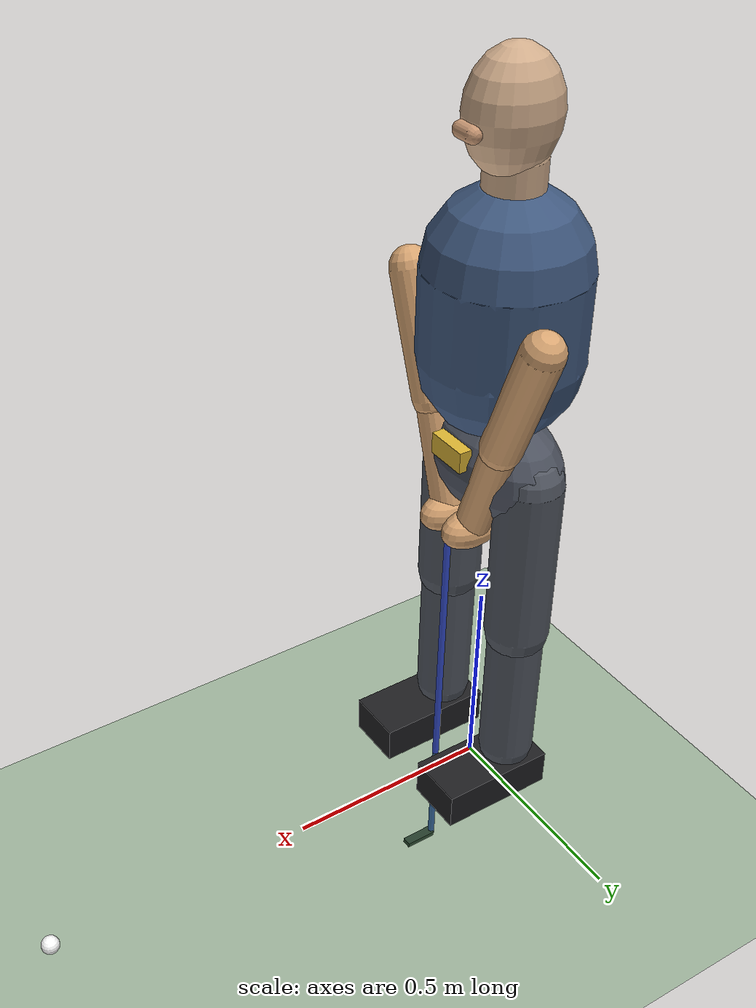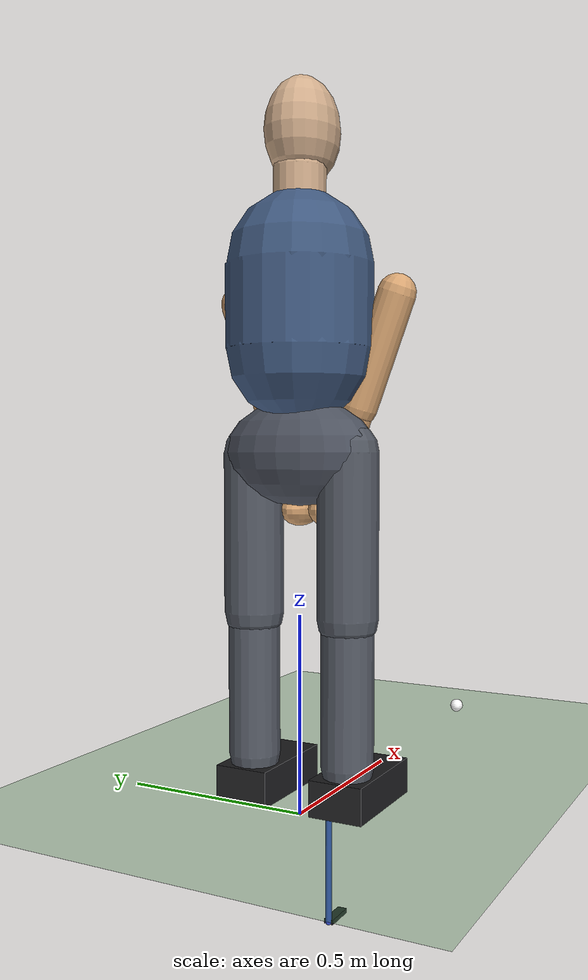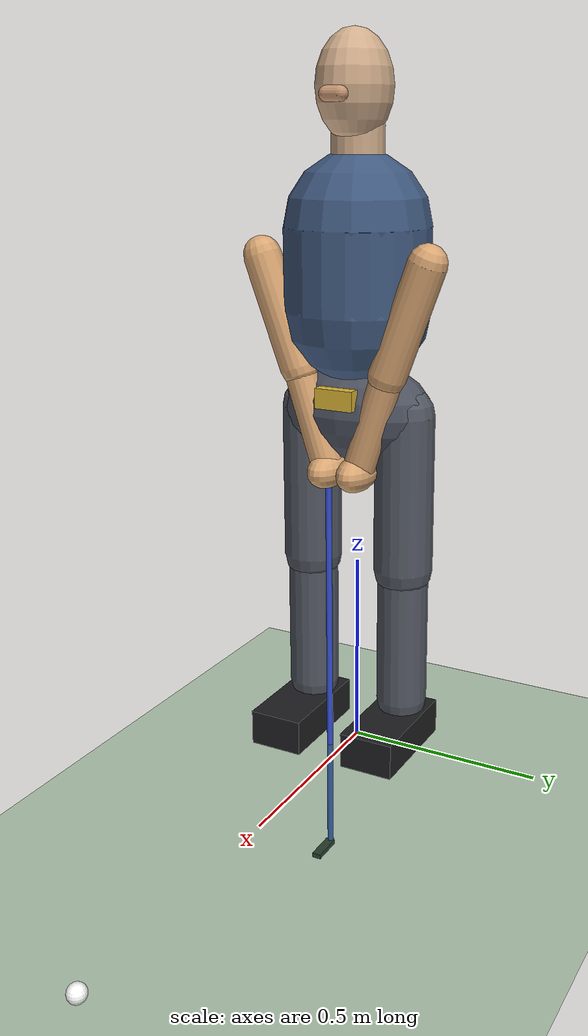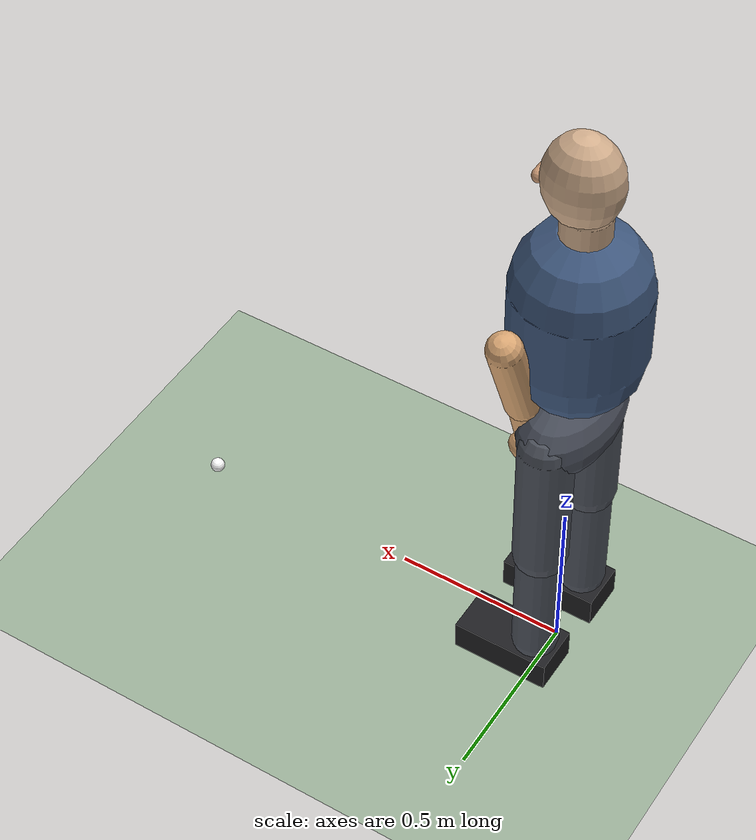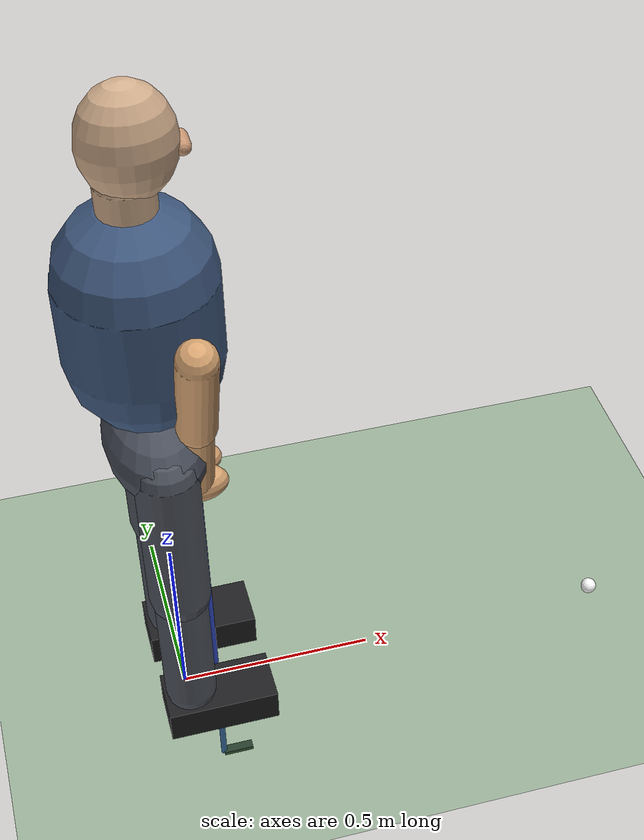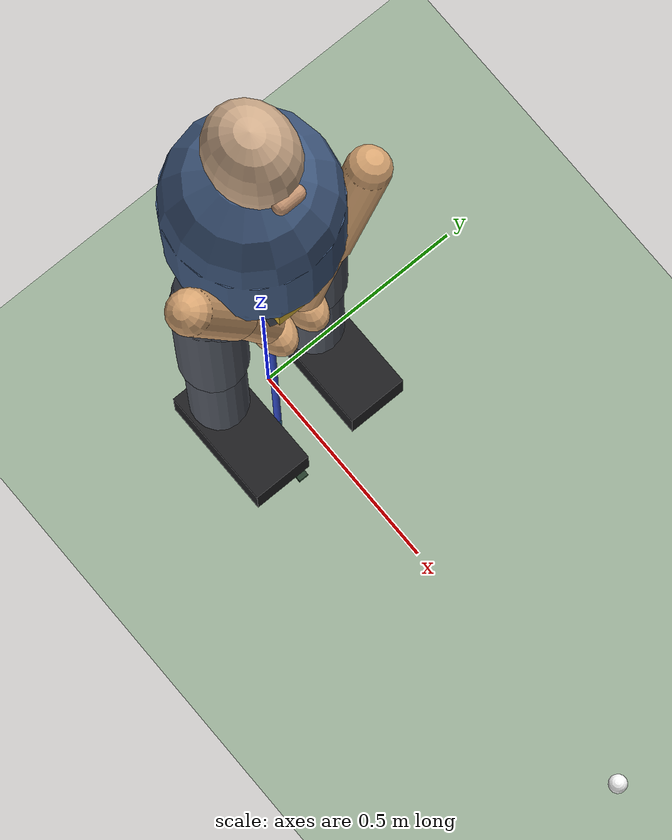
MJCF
<mujoco model="golfer">
  <compiler angle="radian"/>

  <option gravity="0 0 -9.81" timestep="0.001" integrator="RK4"/>
  <!-- Memoria reservada para contactos e restricoes. -->
  <size nconmax="200" njmax="1000"/>

  <!-- Elementos apenas visuais: ceu em gradiente, camara e luz. -->
  <asset>
    <texture type="skybox" builtin="gradient"
             rgb1="0.72 0.87 0.98" rgb2="0.90 0.96 1.0"
             width="512" height="512"/>
  </asset>

  <visual>
    <global azimuth="115" elevation="-12"/>
    <headlight ambient="0.35 0.35 0.35" diffuse="0.8 0.8 0.8"
               specular="0.1 0.1 0.1"/>
  </visual>

  <worldbody>
    <!-- Relva: plano de 10 m x 10 m. Atrito baixo (0.25) para a bola rolar. -->
    <geom name="ground" type="plane" size="5 5 0.1"
          contype="1" conaffinity="6"
          friction="0.25 0.005 0.0001" rgba="0.2 0.5 0.2 1"/>

    <!-- ===================== BACIA ===================== -->
    <!-- Referencial da bacia a 1,10 m do chao (altura da anca). Esta presa ao
         mundo e so pode rodar em torno de Z: nao ha translacao, transferencia
         de peso nem equilibrio. -->
    <body name="pelvis" pos="0 0 1.10">
      <!-- Rotacao axial da bacia (+-31 graus). -->
      <joint name="hip_rotation" type="hinge" axis="0 0 1"
             damping="0.25" range="-0.55 0.55" limited="true"/>
      <!-- Bacia: elipsoide de 8 kg; o MuJoCo calcula a inercia a partir da forma. -->
      <geom name="pelvis_geom" type="ellipsoid" pos="0 0 -0.20"
            size="0.12 0.20 0.13" mass="8" rgba="0.30 0.32 0.37 1"/>
      <!-- Marcador visual na frente da bacia (sem massa nem colisao) para se ver a rotacao das ancas. -->
      <geom name="pelvis_front_marker" type="box" pos="0.115 0 -0.15"
            size="0.015 0.05 0.025" mass="0" contype="0" conaffinity="0"
            rgba="0.85 0.70 0.20 1"/>

      <!-- ===================== PERNAS ===================== -->
      <!-- Perna esquerda (+Y, lado do alvo). A coxa esta soldada a bacia (sem
           articulacao da anca); so o joelho se articula. -->
      <body name="left_leg" pos="0 0.13 -0.20">
        <!-- Coxa: capsula de 0,40 m e 5 kg. -->
        <geom name="left_upper_leg_geom" type="capsule" fromto="0 0 0 0 0 -0.40"
              size="0.075" mass="5" rgba="0.32 0.34 0.38 1"/>
        <!-- Referencial da perna no joelho. -->
        <body name="left_lower_leg" pos="0 0 -0.40">
          <!-- Joelho: flexao em torno de Y, de -9 a 52 graus. -->
          <joint name="left_knee" type="hinge" axis="0 1 0"
                 damping="0.3" range="-0.15 0.9" limited="true"/>
          <!-- Perna: capsula de 0,36 m e 3 kg. -->
          <geom name="left_lower_leg_geom" type="capsule"
                fromto="0 0 0 0 0 -0.36"
                size="0.065" mass="3" rgba="0.32 0.34 0.38 1"/>
          <!-- Pe rigido, sem tornozelo e sem colisao com o chao (a bacia
               ja esta fixa, por isso o pe nao suporta o corpo). -->
          <geom name="left_foot_geom" type="box" pos="0.07 0 -0.43"
                contype="0" conaffinity="0"
                size="0.14 0.07 0.045" mass="1.2" rgba="0.12 0.12 0.13 1"/>
        </body>
      </body>
      <!-- Perna direita (-Y): simetrica da esquerda. -->
      <body name="right_leg" pos="0 -0.13 -0.20">
        <geom name="right_upper_leg_geom" type="capsule" fromto="0 0 0 0 0 -0.40"
              size="0.075" mass="5" rgba="0.32 0.34 0.38 1"/>
        <body name="right_lower_leg" pos="0 0 -0.40">
          <joint name="right_knee" type="hinge" axis="0 1 0"
                 damping="0.3" range="-0.15 0.9" limited="true"/>
          <geom name="right_lower_leg_geom" type="capsule"
                fromto="0 0 0 0 0 -0.36"
                size="0.065" mass="3" rgba="0.32 0.34 0.38 1"/>
          <geom name="right_foot_geom" type="box" pos="0.07 0 -0.43"
                contype="0" conaffinity="0"
                size="0.14 0.07 0.045" mass="1.2" rgba="0.12 0.12 0.13 1"/>
        </body>
      </body>

      <!-- ===================== TRONCO ===================== -->
      <body name="torso" pos="0 0 0">
        <!-- Flexao da anca: inclinacao do tronco, de -20 a 32 graus. -->
        <joint name="hip_flexion" type="hinge" axis="0 1 0" pos="0 0 -0.20"
               damping="0.4" range="-0.35 0.55" limited="true"/>
        <!-- Rotacao do tronco relativamente a bacia (+-60 graus); a diferenca
             entre esta e hip_rotation representa a separacao bacia-ombros. -->
        <joint name="torso_rotation" type="hinge" axis="0 0 1" pos="0 0 -0.20"
               damping="0.18" range="-1.05 1.05" limited="true"/>
        <!-- Tronco: capsula de 25 kg. -->
        <geom name="torso_geom" type="capsule" fromto="0 0 0.05 0 0 0.25"
              size="0.18" mass="25" rgba="0.25 0.35 0.5 1"/>
        <geom name="neck_geom" type="capsule" fromto="0 0 0.36 0 0 0.48"
              size="0.065" mass="0.8" rgba="0.82 0.68 0.55 1"/>
        <geom name="head_geom" type="ellipsoid" pos="0.015 0 0.57"
              size="0.105 0.09 0.13" mass="4.5"
              rgba="0.82 0.68 0.55 1"/>
        <!-- Nariz na frente da cabeca (+X), so para se ver para onde o jogador olha. -->
        <geom name="face_geom" type="capsule" fromto="0.12 -0.018 0.55 0.12 0.018 0.55"
              size="0.018" mass="0.05" rgba="0.78 0.59 0.45 1"/>

        <!-- ============ BRACO DIREITO (segura o taco) ============ -->
        <!-- Referencial no ombro direito, a frente e a direita do tronco. -->
        <body name="right_upper_arm" pos="0.08 -0.22 0.18">
          <!-- Ombro com 2 dof (em vez de 3): elevacao/abducao em torno de X
               (+-52 graus) e flexao/extensao em torno de Y (+-103 graus). -->
          <joint name="right_shoulder_lift" type="hinge" axis="1 0 0"
                 damping="0.08" range="-0.9 0.9" limited="true"/>
          <joint name="right_shoulder" type="hinge" axis="0 1 0"
                 damping="0.05" range="-1.8 1.8" limited="true"/>
          <!-- Braco: capsula de 0,29 m e 2 kg, inclinada para o centro do corpo. -->
          <geom name="right_upper_arm_geom" type="capsule"
                fromto="0 0 0 0 0.10 -0.27" size="0.047" mass="2.0"
                rgba="0.85 0.65 0.45 1"/>

          <!-- Referencial no cotovelo direito. -->
          <body name="right_forearm" pos="0 0.10 -0.27">
            <!-- Cotovelo: flexao em torno de Y, de -149 a 26 graus. -->
            <joint name="right_elbow" type="hinge" axis="0 1 0"
                   damping="0.10" range="-2.6 0.45" limited="true"/>
            <!-- Antebraco: capsula de 0,26 m e 1,2 kg. -->
            <geom name="right_forearm_geom" type="capsule"
                  fromto="0 0 0 0 0.08 -0.25" size="0.040" mass="1.2"
                  rgba="0.85 0.65 0.45 1"/>

            <!-- Mao direita (sem dedos), solidaria com o antebraco. -->
            <body name="right_hand" pos="0 0.08 -0.25">
              <geom name="right_hand_geom" type="ellipsoid" size="0.075 0.045 0.045"
                    mass="0.45" rgba="0.85 0.65 0.45 1"/>

              <!-- ================ TACO ================ -->
              <body name="club_wrist" pos="0 0 0">
                <!-- Pulso: armar/libertar o taco em torno de Y (+-160 graus). -->
                <joint name="right_wrist_hinge" type="hinge" axis="0 1 0"
                       damping="0.08" range="-2.8 2.8" limited="true"/>
                <!-- Haste: cilindro de 1,06 m e 0,30 kg, ao longo de -Z.
                     Sem colisoes, para nao bater no corpo nem no chao. -->
                <geom name="club_shaft" type="capsule"
                      fromto="0 0 0 0 0 -1.06" size="0.008" mass="0.30"
                      contype="0" conaffinity="0" rgba="0.2 0.3 0.8 1"/>
                <!-- Cabeca do taco visivel: so visual (sem massa nem colisao). -->
                <geom name="club_head" type="box" pos="0.04 0 -1.06"
                      size="0.04 0.012 0.006" mass="0"
                      contype="0" conaffinity="0"
                      rgba="0.15 0.15 0.18 1"/>
                <geom name="club_face_collision" type="box" pos="0.04 0 -1.06"
                      euler="0 1.396263 0.261799"
                      size="0.04 0.012 0.006" mass="0.10"
                      contype="4" conaffinity="2"
                      friction="0.05 0.005 0.0001" rgba="0.15 0.15 0.18 0"/>
              </body>
            </body>
          </body>
        </body>

        <!-- ============ BRACO ESQUERDO (apoio) ============ -->
        <body name="left_upper_arm" pos="0.08 0.22 0.18">
          <joint name="left_shoulder_lift" type="hinge" axis="1 0 0"
                 damping="0.08" range="-0.9 0.9" limited="true"/>
          <joint name="left_shoulder" type="hinge" axis="0 1 0"
                 damping="0.05" range="-1.8 1.8" limited="true"/>
          <geom name="left_upper_arm_geom" type="capsule"
                fromto="0 0 0 0 -0.10 -0.27" size="0.047" mass="2.0"
                rgba="0.85 0.65 0.45 1"/>

          <body name="left_forearm" pos="0 -0.10 -0.27">
            <joint name="left_elbow" type="hinge" axis="0 1 0"
                   damping="0.10" range="-2.6 0.45" limited="true"/>
            <geom name="left_forearm_geom" type="capsule"
                  fromto="0 0 0 0 -0.08 -0.25" size="0.040" mass="1.2"
                  rgba="0.85 0.65 0.45 1"/>
            <body name="left_hand" pos="0 -0.08 -0.25">
              <geom name="left_hand_geom" type="ellipsoid"
                    size="0.075 0.045 0.045" mass="0.45"
                    rgba="0.85 0.65 0.45 1"/>
            </body>
          </body>
        </body>
      </body> <!-- fim do tronco: os dois bracos pertencem ao tronco -->
    </body> <!-- fim da bacia -->

    <!-- ===================== BOLA ===================== -->
    <body name="golf_ball" pos="1.151 0.003 0.021">
      <freejoint/>
      <geom name="ball" type="sphere" size="0.021" mass="0.045"
            contype="2" conaffinity="5" solref="-200000 -70"
            friction="0.25 0.005 0.0001" rgba="1 1 1 1"/>
    </body>
  </worldbody>

  <contact>
    <!-- Maos entre si. -->
    <exclude body1="right_hand" body2="left_hand"/>
    <!-- Bola com as coxas. -->
    <exclude body1="golf_ball" body2="left_leg"/>
    <exclude body1="golf_ball" body2="right_leg"/>
    <!-- Bracos com tronco, bacia, pernas e entre si. -->
    <exclude body1="right_upper_arm" body2="torso"/>
    <exclude body1="left_upper_arm" body2="torso"/>
    <exclude body1="right_upper_arm" body2="pelvis"/>
    <exclude body1="left_upper_arm" body2="pelvis"/>
    <exclude body1="right_upper_arm" body2="left_leg"/>
    <exclude body1="right_upper_arm" body2="right_leg"/>
    <exclude body1="left_upper_arm" body2="left_leg"/>
    <exclude body1="left_upper_arm" body2="right_leg"/>
    <exclude body1="right_upper_arm" body2="left_upper_arm"/>
    <!-- Antebracos e mao direita com o tronco. -->
    <exclude body1="right_forearm" body2="torso"/>
    <exclude body1="left_forearm" body2="torso"/>
    <exclude body1="right_hand" body2="torso"/>
    <!-- Bola com as pernas. -->
    <exclude body1="golf_ball" body2="left_lower_leg"/>
    <exclude body1="golf_ball" body2="right_lower_leg"/>
    <!-- Bracos, antebracos e mao direita com as pernas. -->
    <exclude body1="right_upper_arm" body2="left_lower_leg"/>
    <exclude body1="right_upper_arm" body2="right_lower_leg"/>
    <exclude body1="left_upper_arm" body2="left_lower_leg"/>
    <exclude body1="left_upper_arm" body2="right_lower_leg"/>
    <exclude body1="right_forearm" body2="left_lower_leg"/>
    <exclude body1="right_forearm" body2="right_lower_leg"/>
    <exclude body1="left_forearm" body2="left_lower_leg"/>
    <exclude body1="left_forearm" body2="right_lower_leg"/>
    <exclude body1="right_hand" body2="left_lower_leg"/>
    <exclude body1="right_hand" body2="right_lower_leg"/>
    <exclude body1="right_forearm" body2="left_leg"/>
    <exclude body1="right_forearm" body2="right_leg"/>
    <exclude body1="right_forearm" body2="pelvis"/>
    <exclude body1="left_forearm" body2="left_leg"/>
    <exclude body1="left_forearm" body2="right_leg"/>
    <exclude body1="right_hand" body2="left_leg"/>
    <exclude body1="right_hand" body2="right_leg"/>
    <!-- Bracos entre si e com a bacia. -->
    <exclude body1="left_forearm" body2="right_hand"/>
    <exclude body1="left_forearm" body2="pelvis"/>
    <exclude body1="right_hand" body2="pelvis"/>
    <exclude body1="right_forearm" body2="left_forearm"/>
  </contact>

  <actuator>
    <!-- Bacia e tronco. -->
    <position name="hip_motor" joint="hip_rotation" kp="180" kv="24"
              ctrlrange="-0.55 0.55"/>
    <!-- Muito rigido: segura os 25 kg do tronco inclinado contra a gravidade. -->
    <position name="hip_flexion_motor" joint="hip_flexion" kp="1200" kv="80"
              ctrlrange="-0.35 0.55"/>
    <!-- Sem kv: o amortecimento vem so do damping da articulacao. -->
    <position name="torso_motor" joint="torso_rotation" kp="100"
              ctrlrange="-1.05 1.05"/>
    <!-- Braco direito e pulso (cadeia que move o taco). -->
    <position name="right_shoulder_lift_motor" joint="right_shoulder_lift"
              kp="120" kv="20" ctrlrange="-0.9 0.9"/>
    <position name="right_shoulder_motor" joint="right_shoulder" kp="160"
              kv="24" ctrlrange="-1.8 1.8"/>
    <!-- ctrlrange chega a 0.8, mas a articulacao para em 0.45 (range). -->
    <position name="right_elbow_motor" joint="right_elbow" kp="150" kv="22"
              ctrlrange="-2.6 0.8"/>
    <position name="right_wrist_hinge_motor" joint="right_wrist_hinge"
              kp="100" kv="16" ctrlrange="-2.8 2.8"/>
    <!-- Braco esquerdo. -->
    <position name="left_shoulder_lift_motor" joint="left_shoulder_lift"
              kp="120" kv="20" ctrlrange="-0.9 0.9"/>
    <position name="left_shoulder_motor" joint="left_shoulder" kp="180" kv="26"
              ctrlrange="-1.8 1.8"/>
    <position name="left_elbow_motor" joint="left_elbow" kp="180" kv="26"
              ctrlrange="-2.6 0.8"/>
    <!-- Joelhos: ganhos baixos, porque as pernas nao suportam peso. -->
    <position name="left_knee_motor" joint="left_knee" kp="100" kv="18"
              ctrlrange="-0.15 0.9"/>
    <position name="right_knee_motor" joint="right_knee" kp="100" kv="18"
              ctrlrange="-0.15 0.9"/>
  </actuator>
</mujoco>
